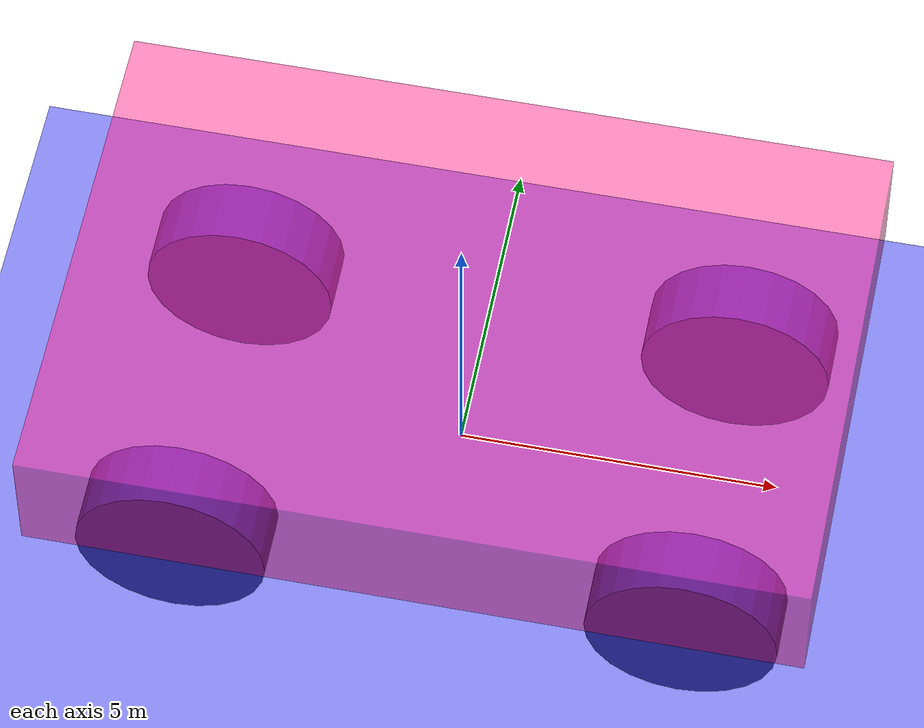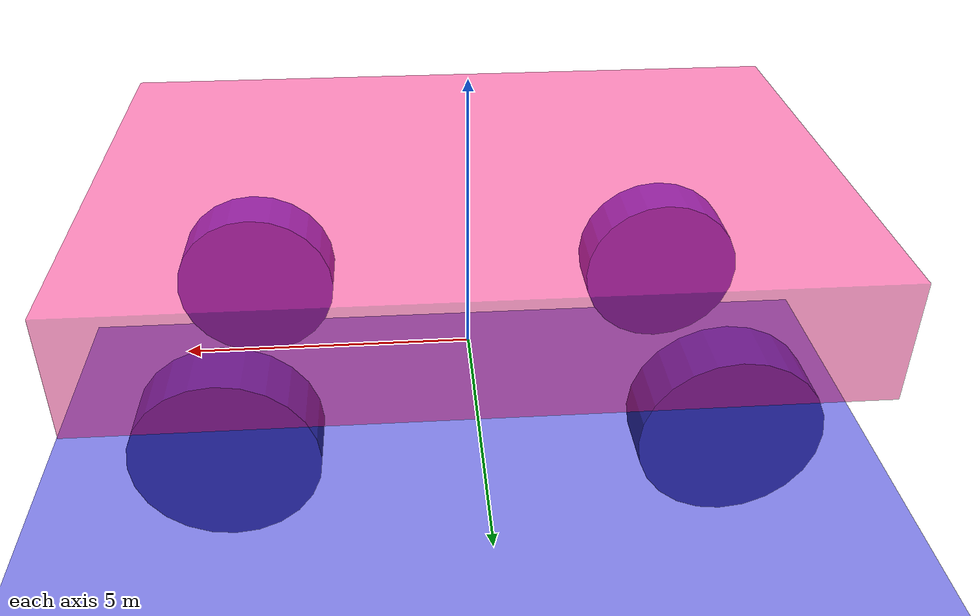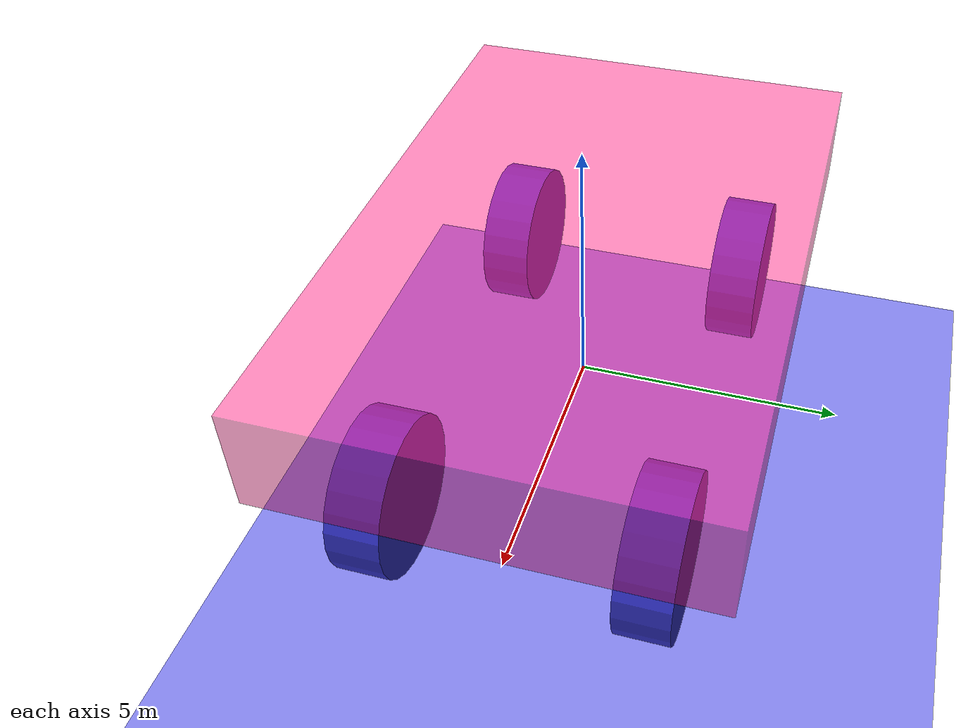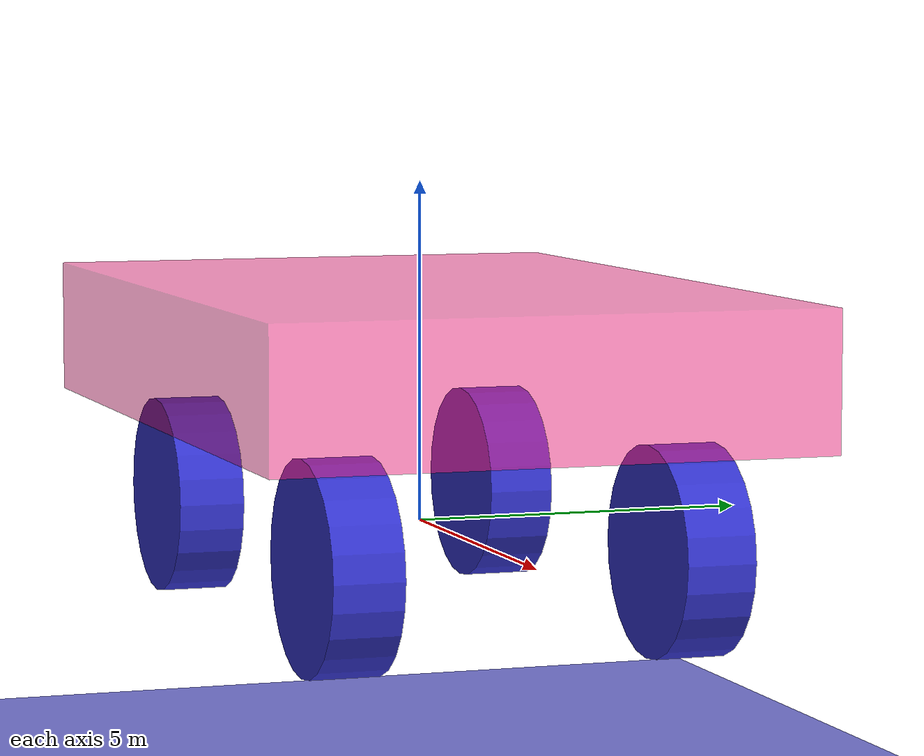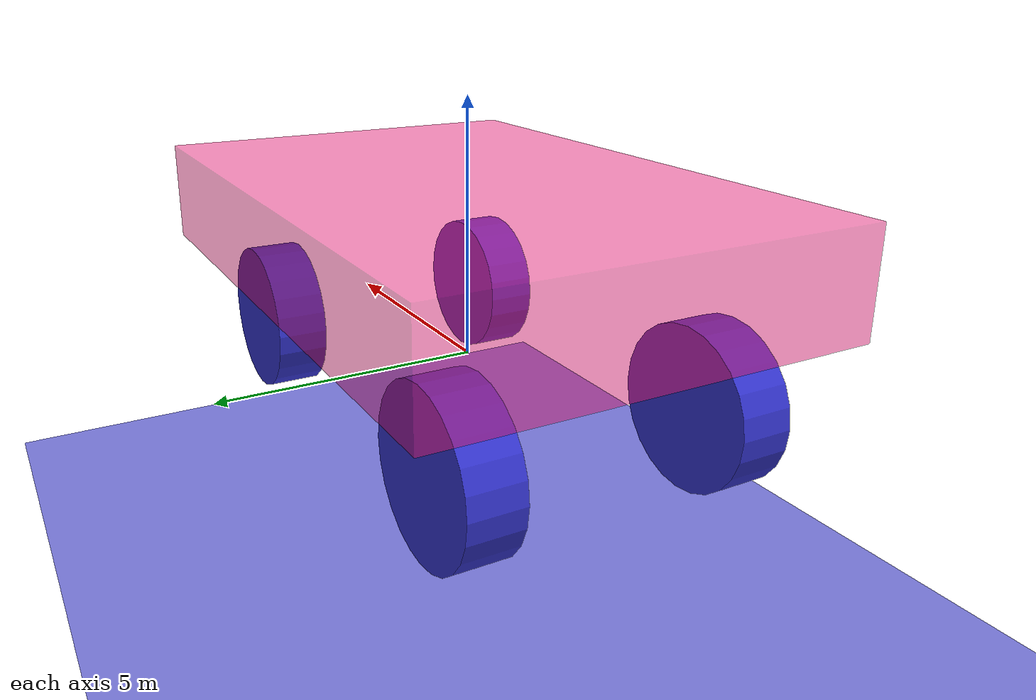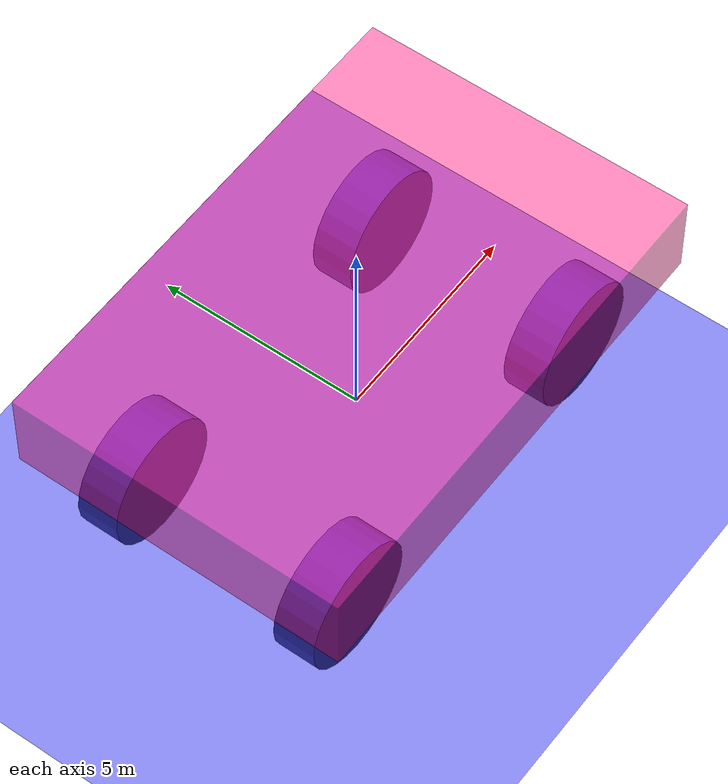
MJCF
<mujoco model="model_1">
    <worldbody>
        <geom type="plane" size="150 150 0.1" pos="0 0 -4" rgba=".5 .5 .9 1"/>
        <light name="top light" diffuse=".9 .5 .5" pos="0 0 10"/>

        <body pos="0 0 0" euler="0 0 0">
        <joint name="all" type="hinge" axis="0 0 1"/>
        <joint name="all2" type="slide" axis="0 0 0"/>
        <joint name="all2" type="slide" axis="0 1 0"/>

            <body name="telo_car" pos="0 0 2.5">
                <geom type="box" size="6 4 1" rgba="1 0.1 0.5 0.5"/>
            </body>

            <body name="left_one" pos="4 2.5 0" euler="90 0 0">
                <geom type="cylinder" size="1.5 0.5" rgba="0.2 0.2 0.8 1"/>
                <joint name="one_1" type="hinge" axis="0 1 0"/>
            </body>

            <body name="right_one" pos="4 -2.5 0" euler="90 0 0">
                <geom type="cylinder" size="1.5 0.5" rgba="0.2 0.2 0.8 1"/>
                <joint name="one_2" type="hinge" axis="0 1 0"/>
            </body>

            <body name="left_two" pos="-4 2.5 0" euler="90 0 0">
                <geom type="cylinder" size="1.5 0.5" rgba="0.2 0.2 0.8 1"/>
                <joint name="one_3" type="hinge" axis="0 1 0"/>
            </body>

            <body name="right_two" pos="-4 -2.5 0" euler="90 0 0">
                <geom type="cylinder" size="1.5 0.5" rgba="0.2 0.2 0.8 1"/>
                <joint name="one_4" type="hinge" axis="0 1 0"/>
            </body>

        </body>
    </worldbody>
</mujoco>
